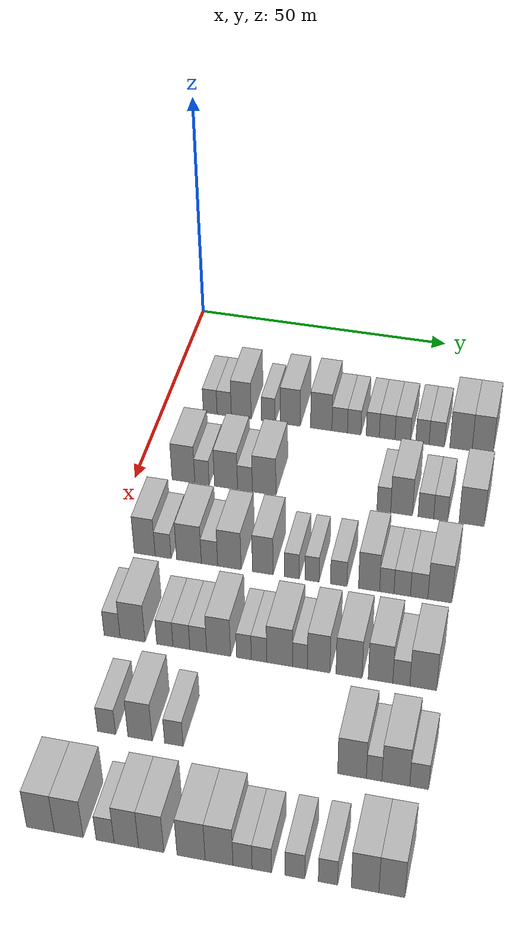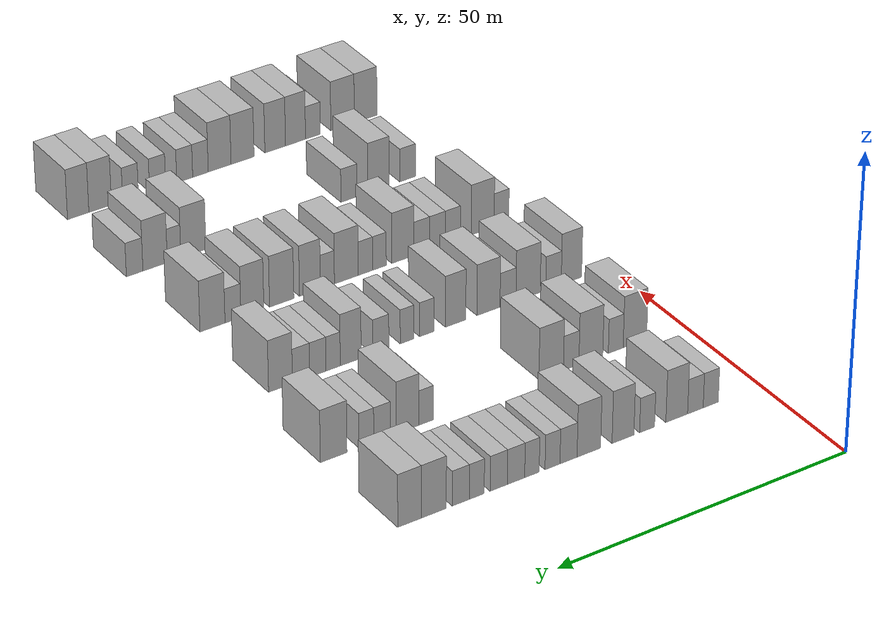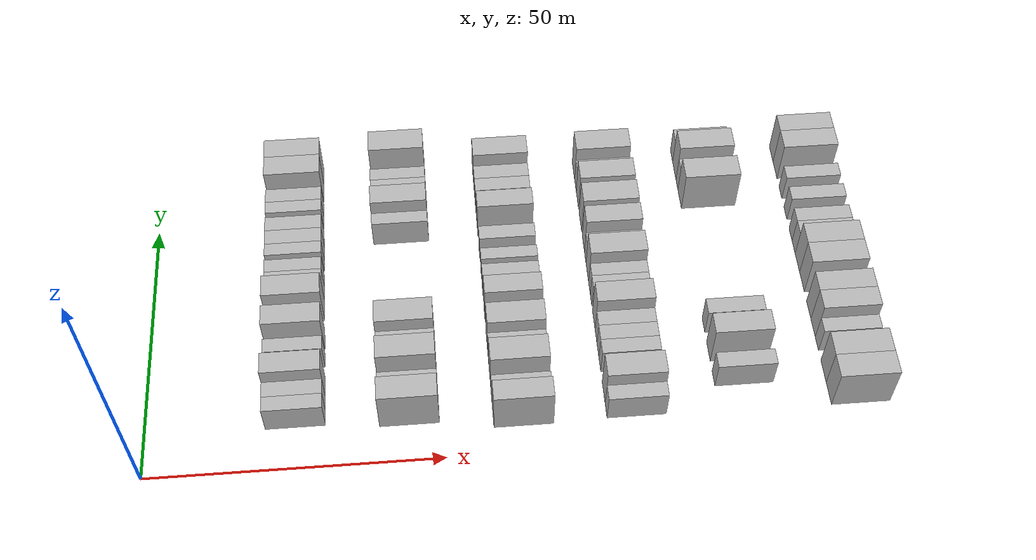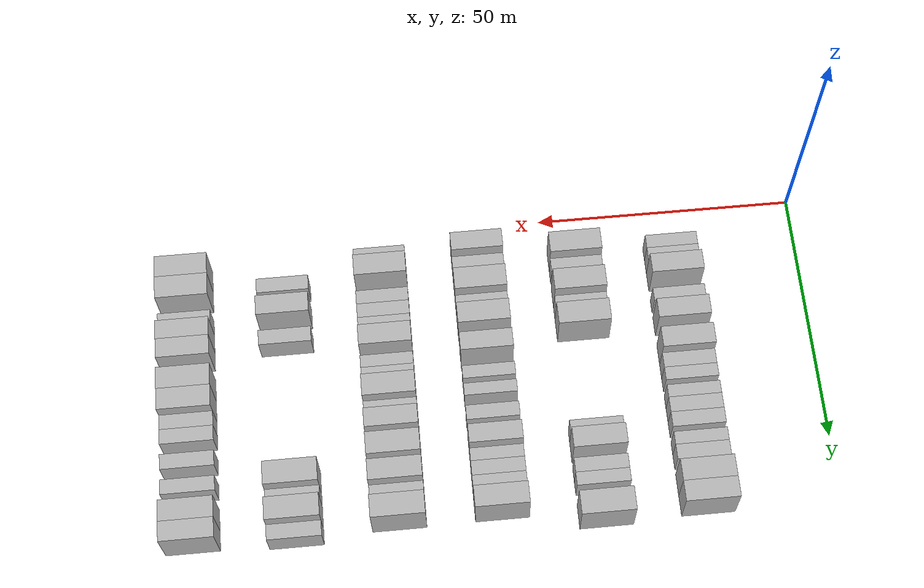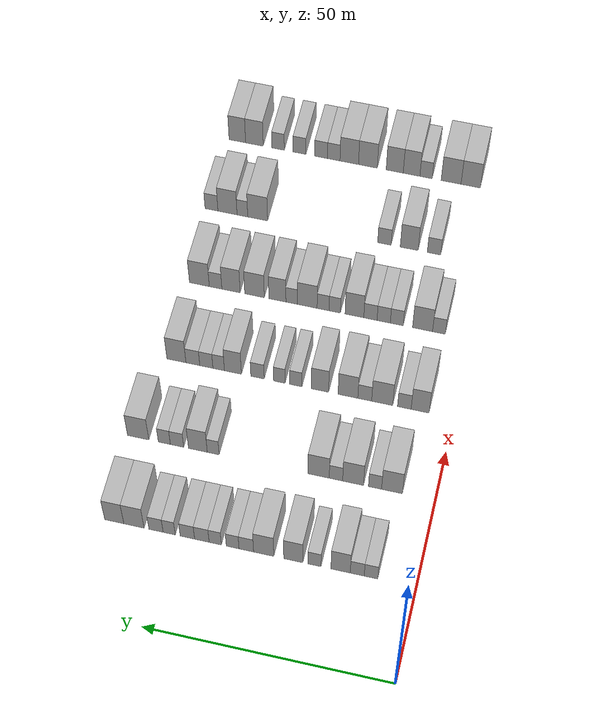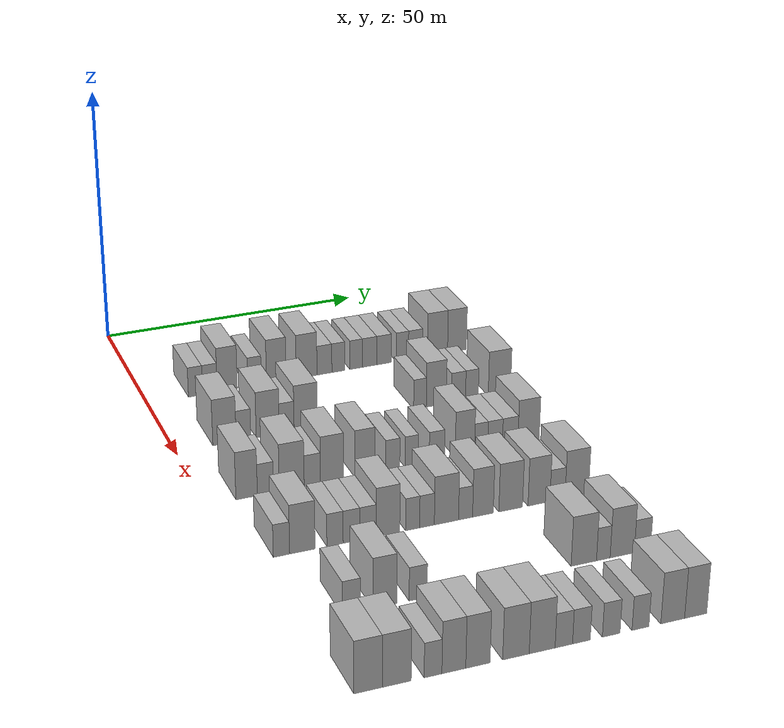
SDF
<sdf version="1.6">
 <world name="default">
  <model name="building_85">
   <static>1</static>
   <pose>25.0000 9.0672 0 0.000000 0.000000 0.000000</pose>
   <link name="link">
    <pose>0 0 3.00 0 0 0</pose>
    <collision name="collision"><geometry><box><size>10.0000 2.7078 6.0000</size></box></geometry></collision>
    <visual name="visual">
     <cast_shadows>0</cast_shadows>
     <geometry><box><size>10.0000 2.7078 6.0000</size></box></geometry>
     <material>
      <script>
       <uri>model://HANNAS_wall/materials/scripts</uri>
       <uri>model://HANNAS_wall/materials/textures</uri>
       <name>vrc/HANNAS_wall</name>
      </script>
     </material>
    </visual>
   </link>
  </model>
  <model name="building_86">
   <static>1</static>
   <pose>25.0000 11.8196 0 0.000000 0.000000 0.000000</pose>
   <link name="link">
    <pose>0 0 3.00 0 0 0</pose>
    <collision name="collision"><geometry><box><size>10.0000 2.7972 6.0000</size></box></geometry></collision>
    <visual name="visual">
     <cast_shadows>0</cast_shadows>
     <geometry><box><size>10.0000 2.7972 6.0000</size></box></geometry>
     <material>
      <script>
       <uri>model://HANNAS_wall/materials/scripts</uri>
       <uri>model://HANNAS_wall/materials/textures</uri>
       <name>vrc/HANNAS_wall</name>
      </script>
     </material>
    </visual>
   </link>
  </model>
  <model name="building_87">
   <static>1</static>
   <pose>25.0000 15.1560 0 0.000000 0.000000 0.000000</pose>
   <link name="link">
    <pose>0 0 4.50 0 0 0</pose>
    <collision name="collision"><geometry><box><size>10.0000 3.8756 9.0000</size></box></geometry></collision>
    <visual name="visual">
     <cast_shadows>0</cast_shadows>
     <geometry><box><size>10.0000 3.8756 9.0000</size></box></geometry>
     <material>
      <script>
       <uri>model://HANNAS_wall/materials/scripts</uri>
       <uri>model://HANNAS_wall/materials/textures</uri>
       <name>vrc/HANNAS_wall</name>
      </script>
     </material>
    </visual>
   </link>
  </model>
  <model name="building_88">
   <static>1</static>
   <pose>25.0000 20.4223 0 0.000000 0.000000 0.000000</pose>
   <link name="link">
    <pose>0 0 3.00 0 0 0</pose>
    <collision name="collision"><geometry><box><size>10.0000 2.6571 6.0000</size></box></geometry></collision>
    <visual name="visual">
     <cast_shadows>0</cast_shadows>
     <geometry><box><size>10.0000 2.6571 6.0000</size></box></geometry>
     <material>
      <script>
       <uri>model://HANNAS_wall/materials/scripts</uri>
       <uri>model://HANNAS_wall/materials/textures</uri>
       <name>vrc/HANNAS_wall</name>
      </script>
     </material>
    </visual>
   </link>
  </model>
  <model name="building_89">
   <static>1</static>
   <pose>25.0000 24.6739 0 0.000000 0.000000 0.000000</pose>
   <link name="link">
    <pose>0 0 4.50 0 0 0</pose>
    <collision name="collision"><geometry><box><size>10.0000 3.8461 9.0000</size></box></geometry></collision>
    <visual name="visual">
     <cast_shadows>0</cast_shadows>
     <geometry><box><size>10.0000 3.8461 9.0000</size></box></geometry>
     <material>
      <script>
       <uri>model://HANNAS_wall/materials/scripts</uri>
       <uri>model://HANNAS_wall/materials/textures</uri>
       <name>vrc/HANNAS_wall</name>
      </script>
     </material>
    </visual>
   </link>
  </model>
  <model name="building_90">
   <static>1</static>
   <pose>25.0000 30.6470 0 0.000000 0.000000 0.000000</pose>
   <link name="link">
    <pose>0 0 4.50 0 0 0</pose>
    <collision name="collision"><geometry><box><size>10.0000 4.1002 9.0000</size></box></geometry></collision>
    <visual name="visual">
     <cast_shadows>0</cast_shadows>
     <geometry><box><size>10.0000 4.1002 9.0000</size></box></geometry>
     <material>
      <script>
       <uri>model://HANNAS_wall/materials/scripts</uri>
       <uri>model://HANNAS_wall/materials/textures</uri>
       <name>vrc/HANNAS_wall</name>
      </script>
     </material>
    </visual>
   </link>
  </model>
  <model name="building_91">
   <static>1</static>
   <pose>25.0000 34.1782 0 0.000000 0.000000 0.000000</pose>
   <link name="link">
    <pose>0 0 3.00 0 0 0</pose>
    <collision name="collision"><geometry><box><size>10.0000 2.9622 6.0000</size></box></geometry></collision>
    <visual name="visual">
     <cast_shadows>0</cast_shadows>
     <geometry><box><size>10.0000 2.9622 6.0000</size></box></geometry>
     <material>
      <script>
       <uri>model://HANNAS_wall/materials/scripts</uri>
       <uri>model://HANNAS_wall/materials/textures</uri>
       <name>vrc/HANNAS_wall</name>
      </script>
     </material>
    </visual>
   </link>
  </model>
  <model name="building_92">
   <static>1</static>
   <pose>25.0000 36.9518 0 0.000000 0.000000 0.000000</pose>
   <link name="link">
    <pose>0 0 3.00 0 0 0</pose>
    <collision name="collision"><geometry><box><size>10.0000 2.5851 6.0000</size></box></geometry></collision>
    <visual name="visual">
     <cast_shadows>0</cast_shadows>
     <geometry><box><size>10.0000 2.5851 6.0000</size></box></geometry>
     <material>
      <script>
       <uri>model://HANNAS_wall/materials/scripts</uri>
       <uri>model://HANNAS_wall/materials/textures</uri>
       <name>vrc/HANNAS_wall</name>
      </script>
     </material>
    </visual>
   </link>
  </model>
  <model name="building_93">
   <static>1</static>
   <pose>25.0000 40.4892 0 0.000000 0.000000 0.000000</pose>
   <link name="link">
    <pose>0 0 3.00 0 0 0</pose>
    <collision name="collision"><geometry><box><size>10.0000 2.4897 6.0000</size></box></geometry></collision>
    <visual name="visual">
     <cast_shadows>0</cast_shadows>
     <geometry><box><size>10.0000 2.4897 6.0000</size></box></geometry>
     <material>
      <script>
       <uri>model://HANNAS_wall/materials/scripts</uri>
       <uri>model://HANNAS_wall/materials/textures</uri>
       <name>vrc/HANNAS_wall</name>
      </script>
     </material>
    </visual>
   </link>
  </model>
  <model name="building_94">
   <static>1</static>
   <pose>25.0000 43.2177 0 0.000000 0.000000 0.000000</pose>
   <link name="link">
    <pose>0 0 3.00 0 0 0</pose>
    <collision name="collision"><geometry><box><size>10.0000 2.9672 6.0000</size></box></geometry></collision>
    <visual name="visual">
     <cast_shadows>0</cast_shadows>
     <geometry><box><size>10.0000 2.9672 6.0000</size></box></geometry>
     <material>
      <script>
       <uri>model://HANNAS_wall/materials/scripts</uri>
       <uri>model://HANNAS_wall/materials/textures</uri>
       <name>vrc/HANNAS_wall</name>
      </script>
     </material>
    </visual>
   </link>
  </model>
  <model name="building_95">
   <static>1</static>
   <pose>25.0000 46.1717 0 0.000000 0.000000 0.000000</pose>
   <link name="link">
    <pose>0 0 3.00 0 0 0</pose>
    <collision name="collision"><geometry><box><size>10.0000 2.9409 6.0000</size></box></geometry></collision>
    <visual name="visual">
     <cast_shadows>0</cast_shadows>
     <geometry><box><size>10.0000 2.9409 6.0000</size></box></geometry>
     <material>
      <script>
       <uri>model://HANNAS_wall/materials/scripts</uri>
       <uri>model://HANNAS_wall/materials/textures</uri>
       <name>vrc/HANNAS_wall</name>
      </script>
     </material>
    </visual>
   </link>
  </model>
  <model name="building_96">
   <static>1</static>
   <pose>25.0000 49.8924 0 0.000000 0.000000 0.000000</pose>
   <link name="link">
    <pose>0 0 3.00 0 0 0</pose>
    <collision name="collision"><geometry><box><size>10.0000 2.5004 6.0000</size></box></geometry></collision>
    <visual name="visual">
     <cast_shadows>0</cast_shadows>
     <geometry><box><size>10.0000 2.5004 6.0000</size></box></geometry>
     <material>
      <script>
       <uri>model://HANNAS_wall/materials/scripts</uri>
       <uri>model://HANNAS_wall/materials/textures</uri>
       <name>vrc/HANNAS_wall</name>
      </script>
     </material>
    </visual>
   </link>
  </model>
  <model name="building_97">
   <static>1</static>
   <pose>25.0000 52.5951 0 0.000000 0.000000 0.000000</pose>
   <link name="link">
    <pose>0 0 3.00 0 0 0</pose>
    <collision name="collision"><geometry><box><size>10.0000 2.9051 6.0000</size></box></geometry></collision>
    <visual name="visual">
     <cast_shadows>0</cast_shadows>
     <geometry><box><size>10.0000 2.9051 6.0000</size></box></geometry>
     <material>
      <script>
       <uri>model://HANNAS_wall/materials/scripts</uri>
       <uri>model://HANNAS_wall/materials/textures</uri>
       <name>vrc/HANNAS_wall</name>
      </script>
     </material>
    </visual>
   </link>
  </model>
  <model name="building_98">
   <static>1</static>
   <pose>25.0000 57.1298 0 0.000000 0.000000 0.000000</pose>
   <link name="link">
    <pose>0 0 4.50 0 0 0</pose>
    <collision name="collision"><geometry><box><size>10.0000 4.1644 9.0000</size></box></geometry></collision>
    <visual name="visual">
     <cast_shadows>0</cast_shadows>
     <geometry><box><size>10.0000 4.1644 9.0000</size></box></geometry>
     <material>
      <script>
       <uri>model://HANNAS_wall/materials/scripts</uri>
       <uri>model://HANNAS_wall/materials/textures</uri>
       <name>vrc/HANNAS_wall</name>
      </script>
     </material>
    </visual>
   </link>
  </model>
  <model name="building_99">
   <static>1</static>
   <pose>25.0000 61.1807 0 0.000000 0.000000 0.000000</pose>
   <link name="link">
    <pose>0 0 4.50 0 0 0</pose>
    <collision name="collision"><geometry><box><size>10.0000 3.9374 9.0000</size></box></geometry></collision>
    <visual name="visual">
     <cast_shadows>0</cast_shadows>
     <geometry><box><size>10.0000 3.9374 9.0000</size></box></geometry>
     <material>
      <script>
       <uri>model://HANNAS_wall/materials/scripts</uri>
       <uri>model://HANNAS_wall/materials/textures</uri>
       <name>vrc/HANNAS_wall</name>
      </script>
     </material>
    </visual>
   </link>
  </model>
  <model name="building_264">
   <static>1</static>
   <pose>44.0000 8.8675 0 0.000000 0.000000 0.000000</pose>
   <link name="link">
    <pose>0 0 4.50 0 0 0</pose>
    <collision name="collision"><geometry><box><size>10.0000 4.2689 9.0000</size></box></geometry></collision>
    <visual name="visual">
     <cast_shadows>0</cast_shadows>
     <geometry><box><size>10.0000 4.2689 9.0000</size></box></geometry>
     <material>
      <script>
       <uri>model://HANNAS_wall/materials/scripts</uri>
       <uri>model://HANNAS_wall/materials/textures</uri>
       <name>vrc/HANNAS_wall</name>
      </script>
     </material>
    </visual>
   </link>
  </model>
  <model name="building_265">
   <static>1</static>
   <pose>44.0000 12.3481 0 0.000000 0.000000 0.000000</pose>
   <link name="link">
    <pose>0 0 3.00 0 0 0</pose>
    <collision name="collision"><geometry><box><size>10.0000 2.6922 6.0000</size></box></geometry></collision>
    <visual name="visual">
     <cast_shadows>0</cast_shadows>
     <geometry><box><size>10.0000 2.6922 6.0000</size></box></geometry>
     <material>
      <script>
       <uri>model://HANNAS_wall/materials/scripts</uri>
       <uri>model://HANNAS_wall/materials/textures</uri>
       <name>vrc/HANNAS_wall</name>
      </script>
     </material>
    </visual>
   </link>
  </model>
  <model name="building_266">
   <static>1</static>
   <pose>44.0000 16.8398 0 0.000000 0.000000 0.000000</pose>
   <link name="link">
    <pose>0 0 4.50 0 0 0</pose>
    <collision name="collision"><geometry><box><size>10.0000 4.2910 9.0000</size></box></geometry></collision>
    <visual name="visual">
     <cast_shadows>0</cast_shadows>
     <geometry><box><size>10.0000 4.2910 9.0000</size></box></geometry>
     <material>
      <script>
       <uri>model://HANNAS_wall/materials/scripts</uri>
       <uri>model://HANNAS_wall/materials/textures</uri>
       <name>vrc/HANNAS_wall</name>
      </script>
     </material>
    </visual>
   </link>
  </model>
  <model name="building_267">
   <static>1</static>
   <pose>44.0000 20.3660 0 0.000000 0.000000 0.000000</pose>
   <link name="link">
    <pose>0 0 3.00 0 0 0</pose>
    <collision name="collision"><geometry><box><size>10.0000 2.7615 6.0000</size></box></geometry></collision>
    <visual name="visual">
     <cast_shadows>0</cast_shadows>
     <geometry><box><size>10.0000 2.7615 6.0000</size></box></geometry>
     <material>
      <script>
       <uri>model://HANNAS_wall/materials/scripts</uri>
       <uri>model://HANNAS_wall/materials/textures</uri>
       <name>vrc/HANNAS_wall</name>
      </script>
     </material>
    </visual>
   </link>
  </model>
  <model name="building_268">
   <static>1</static>
   <pose>44.0000 23.9298 0 0.000000 0.000000 0.000000</pose>
   <link name="link">
    <pose>0 0 4.50 0 0 0</pose>
    <collision name="collision"><geometry><box><size>10.0000 4.3659 9.0000</size></box></geometry></collision>
    <visual name="visual">
     <cast_shadows>0</cast_shadows>
     <geometry><box><size>10.0000 4.3659 9.0000</size></box></geometry>
     <material>
      <script>
       <uri>model://HANNAS_wall/materials/scripts</uri>
       <uri>model://HANNAS_wall/materials/textures</uri>
       <name>vrc/HANNAS_wall</name>
      </script>
     </material>
    </visual>
   </link>
  </model>
  <model name="building_269">
   <static>1</static>
   <pose>44.0000 45.8325 0 0.000000 0.000000 0.000000</pose>
   <link name="link">
    <pose>0 0 3.00 0 0 0</pose>
    <collision name="collision"><geometry><box><size>10.0000 2.4798 6.0000</size></box></geometry></collision>
    <visual name="visual">
     <cast_shadows>0</cast_shadows>
     <geometry><box><size>10.0000 2.4798 6.0000</size></box></geometry>
     <material>
      <script>
       <uri>model://HANNAS_wall/materials/scripts</uri>
       <uri>model://HANNAS_wall/materials/textures</uri>
       <name>vrc/HANNAS_wall</name>
      </script>
     </material>
    </visual>
   </link>
  </model>
  <model name="building_270">
   <static>1</static>
   <pose>44.0000 49.0403 0 0.000000 0.000000 0.000000</pose>
   <link name="link">
    <pose>0 0 4.50 0 0 0</pose>
    <collision name="collision"><geometry><box><size>10.0000 3.9358 9.0000</size></box></geometry></collision>
    <visual name="visual">
     <cast_shadows>0</cast_shadows>
     <geometry><box><size>10.0000 3.9358 9.0000</size></box></geometry>
     <material>
      <script>
       <uri>model://HANNAS_wall/materials/scripts</uri>
       <uri>model://HANNAS_wall/materials/textures</uri>
       <name>vrc/HANNAS_wall</name>
      </script>
     </material>
    </visual>
   </link>
  </model>
  <model name="building_271">
   <static>1</static>
   <pose>44.0000 53.4089 0 0.000000 0.000000 0.000000</pose>
   <link name="link">
    <pose>0 0 3.00 0 0 0</pose>
    <collision name="collision"><geometry><box><size>10.0000 2.8014 6.0000</size></box></geometry></collision>
    <visual name="visual">
     <cast_shadows>0</cast_shadows>
     <geometry><box><size>10.0000 2.8014 6.0000</size></box></geometry>
     <material>
      <script>
       <uri>model://HANNAS_wall/materials/scripts</uri>
       <uri>model://HANNAS_wall/materials/textures</uri>
       <name>vrc/HANNAS_wall</name>
      </script>
     </material>
    </visual>
   </link>
  </model>
  <model name="building_272">
   <static>1</static>
   <pose>44.0000 56.0803 0 0.000000 0.000000 0.000000</pose>
   <link name="link">
    <pose>0 0 3.00 0 0 0</pose>
    <collision name="collision"><geometry><box><size>10.0000 2.5414 6.0000</size></box></geometry></collision>
    <visual name="visual">
     <cast_shadows>0</cast_shadows>
     <geometry><box><size>10.0000 2.5414 6.0000</size></box></geometry>
     <material>
      <script>
       <uri>model://HANNAS_wall/materials/scripts</uri>
       <uri>model://HANNAS_wall/materials/textures</uri>
       <name>vrc/HANNAS_wall</name>
      </script>
     </material>
    </visual>
   </link>
  </model>
  <model name="building_273">
   <static>1</static>
   <pose>44.0000 61.5956 0 0.000000 0.000000 0.000000</pose>
   <link name="link">
    <pose>0 0 4.50 0 0 0</pose>
    <collision name="collision"><geometry><box><size>10.0000 4.4893 9.0000</size></box></geometry></collision>
    <visual name="visual">
     <cast_shadows>0</cast_shadows>
     <geometry><box><size>10.0000 4.4893 9.0000</size></box></geometry>
     <material>
      <script>
       <uri>model://HANNAS_wall/materials/scripts</uri>
       <uri>model://HANNAS_wall/materials/textures</uri>
       <name>vrc/HANNAS_wall</name>
      </script>
     </material>
    </visual>
   </link>
  </model>
  <model name="building_433">
   <static>1</static>
   <pose>63.0000 6.9643 0 0.000000 0.000000 0.000000</pose>
   <link name="link">
    <pose>0 0 4.50 0 0 0</pose>
    <collision name="collision"><geometry><box><size>10.0000 3.7540 9.0000</size></box></geometry></collision>
    <visual name="visual">
     <cast_shadows>0</cast_shadows>
     <geometry><box><size>10.0000 3.7540 9.0000</size></box></geometry>
     <material>
      <script>
       <uri>model://HANNAS_wall/materials/scripts</uri>
       <uri>model://HANNAS_wall/materials/textures</uri>
       <name>vrc/HANNAS_wall</name>
      </script>
     </material>
    </visual>
   </link>
  </model>
  <model name="building_434">
   <static>1</static>
   <pose>63.0000 10.2673 0 0.000000 0.000000 0.000000</pose>
   <link name="link">
    <pose>0 0 3.00 0 0 0</pose>
    <collision name="collision"><geometry><box><size>10.0000 2.8521 6.0000</size></box></geometry></collision>
    <visual name="visual">
     <cast_shadows>0</cast_shadows>
     <geometry><box><size>10.0000 2.8521 6.0000</size></box></geometry>
     <material>
      <script>
       <uri>model://HANNAS_wall/materials/scripts</uri>
       <uri>model://HANNAS_wall/materials/textures</uri>
       <name>vrc/HANNAS_wall</name>
      </script>
     </material>
    </visual>
   </link>
  </model>
  <model name="building_435">
   <static>1</static>
   <pose>63.0000 14.9047 0 0.000000 0.000000 0.000000</pose>
   <link name="link">
    <pose>0 0 4.50 0 0 0</pose>
    <collision name="collision"><geometry><box><size>10.0000 4.4228 9.0000</size></box></geometry></collision>
    <visual name="visual">
     <cast_shadows>0</cast_shadows>
     <geometry><box><size>10.0000 4.4228 9.0000</size></box></geometry>
     <material>
      <script>
       <uri>model://HANNAS_wall/materials/scripts</uri>
       <uri>model://HANNAS_wall/materials/textures</uri>
       <name>vrc/HANNAS_wall</name>
      </script>
     </material>
    </visual>
   </link>
  </model>
  <model name="building_436">
   <static>1</static>
   <pose>63.0000 18.5674 0 0.000000 0.000000 0.000000</pose>
   <link name="link">
    <pose>0 0 3.00 0 0 0</pose>
    <collision name="collision"><geometry><box><size>10.0000 2.9027 6.0000</size></box></geometry></collision>
    <visual name="visual">
     <cast_shadows>0</cast_shadows>
     <geometry><box><size>10.0000 2.9027 6.0000</size></box></geometry>
     <material>
      <script>
       <uri>model://HANNAS_wall/materials/scripts</uri>
       <uri>model://HANNAS_wall/materials/textures</uri>
       <name>vrc/HANNAS_wall</name>
      </script>
     </material>
    </visual>
   </link>
  </model>
  <model name="building_437">
   <static>1</static>
   <pose>63.0000 22.1023 0 0.000000 0.000000 0.000000</pose>
   <link name="link">
    <pose>0 0 4.50 0 0 0</pose>
    <collision name="collision"><geometry><box><size>10.0000 4.1671 9.0000</size></box></geometry></collision>
    <visual name="visual">
     <cast_shadows>0</cast_shadows>
     <geometry><box><size>10.0000 4.1671 9.0000</size></box></geometry>
     <material>
      <script>
       <uri>model://HANNAS_wall/materials/scripts</uri>
       <uri>model://HANNAS_wall/materials/textures</uri>
       <name>vrc/HANNAS_wall</name>
      </script>
     </material>
    </visual>
   </link>
  </model>
  <model name="building_438">
   <static>1</static>
   <pose>63.0000 28.0080 0 0.000000 0.000000 0.000000</pose>
   <link name="link">
    <pose>0 0 4.50 0 0 0</pose>
    <collision name="collision"><geometry><box><size>10.0000 3.6443 9.0000</size></box></geometry></collision>
    <visual name="visual">
     <cast_shadows>0</cast_shadows>
     <geometry><box><size>10.0000 3.6443 9.0000</size></box></geometry>
     <material>
      <script>
       <uri>model://HANNAS_wall/materials/scripts</uri>
       <uri>model://HANNAS_wall/materials/textures</uri>
       <name>vrc/HANNAS_wall</name>
      </script>
     </material>
    </visual>
   </link>
  </model>
  <model name="building_439">
   <static>1</static>
   <pose>63.0000 33.1246 0 0.000000 0.000000 0.000000</pose>
   <link name="link">
    <pose>0 0 3.00 0 0 0</pose>
    <collision name="collision"><geometry><box><size>10.0000 2.5888 6.0000</size></box></geometry></collision>
    <visual name="visual">
     <cast_shadows>0</cast_shadows>
     <geometry><box><size>10.0000 2.5888 6.0000</size></box></geometry>
     <material>
      <script>
       <uri>model://HANNAS_wall/materials/scripts</uri>
       <uri>model://HANNAS_wall/materials/textures</uri>
       <name>vrc/HANNAS_wall</name>
      </script>
     </material>
    </visual>
   </link>
  </model>
  <model name="building_440">
   <static>1</static>
   <pose>63.0000 36.6384 0 0.000000 0.000000 0.000000</pose>
   <link name="link">
    <pose>0 0 3.00 0 0 0</pose>
    <collision name="collision"><geometry><box><size>10.0000 2.4387 6.0000</size></box></geometry></collision>
    <visual name="visual">
     <cast_shadows>0</cast_shadows>
     <geometry><box><size>10.0000 2.4387 6.0000</size></box></geometry>
     <material>
      <script>
       <uri>model://HANNAS_wall/materials/scripts</uri>
       <uri>model://HANNAS_wall/materials/textures</uri>
       <name>vrc/HANNAS_wall</name>
      </script>
     </material>
    </visual>
   </link>
  </model>
  <model name="building_441">
   <static>1</static>
   <pose>63.0000 41.2878 0 0.000000 0.000000 0.000000</pose>
   <link name="link">
    <pose>0 0 3.00 0 0 0</pose>
    <collision name="collision"><geometry><box><size>10.0000 2.8603 6.0000</size></box></geometry></collision>
    <visual name="visual">
     <cast_shadows>0</cast_shadows>
     <geometry><box><size>10.0000 2.8603 6.0000</size></box></geometry>
     <material>
      <script>
       <uri>model://HANNAS_wall/materials/scripts</uri>
       <uri>model://HANNAS_wall/materials/textures</uri>
       <name>vrc/HANNAS_wall</name>
      </script>
     </material>
    </visual>
   </link>
  </model>
  <model name="building_442">
   <static>1</static>
   <pose>63.0000 46.5368 0 0.000000 0.000000 0.000000</pose>
   <link name="link">
    <pose>0 0 4.50 0 0 0</pose>
    <collision name="collision"><geometry><box><size>10.0000 3.6377 9.0000</size></box></geometry></collision>
    <visual name="visual">
     <cast_shadows>0</cast_shadows>
     <geometry><box><size>10.0000 3.6377 9.0000</size></box></geometry>
     <material>
      <script>
       <uri>model://HANNAS_wall/materials/scripts</uri>
       <uri>model://HANNAS_wall/materials/textures</uri>
       <name>vrc/HANNAS_wall</name>
      </script>
     </material>
    </visual>
   </link>
  </model>
  <model name="building_443">
   <static>1</static>
   <pose>63.0000 49.5938 0 0.000000 0.000000 0.000000</pose>
   <link name="link">
    <pose>0 0 3.00 0 0 0</pose>
    <collision name="collision"><geometry><box><size>10.0000 2.4761 6.0000</size></box></geometry></collision>
    <visual name="visual">
     <cast_shadows>0</cast_shadows>
     <geometry><box><size>10.0000 2.4761 6.0000</size></box></geometry>
     <material>
      <script>
       <uri>model://HANNAS_wall/materials/scripts</uri>
       <uri>model://HANNAS_wall/materials/textures</uri>
       <name>vrc/HANNAS_wall</name>
      </script>
     </material>
    </visual>
   </link>
  </model>
  <model name="building_444">
   <static>1</static>
   <pose>63.0000 52.2409 0 0.000000 0.000000 0.000000</pose>
   <link name="link">
    <pose>0 0 3.00 0 0 0</pose>
    <collision name="collision"><geometry><box><size>10.0000 2.8182 6.0000</size></box></geometry></collision>
    <visual name="visual">
     <cast_shadows>0</cast_shadows>
     <geometry><box><size>10.0000 2.8182 6.0000</size></box></geometry>
     <material>
      <script>
       <uri>model://HANNAS_wall/materials/scripts</uri>
       <uri>model://HANNAS_wall/materials/textures</uri>
       <name>vrc/HANNAS_wall</name>
      </script>
     </material>
    </visual>
   </link>
  </model>
  <model name="building_445">
   <static>1</static>
   <pose>63.0000 55.1361 0 0.000000 0.000000 0.000000</pose>
   <link name="link">
    <pose>0 0 3.00 0 0 0</pose>
    <collision name="collision"><geometry><box><size>10.0000 2.9723 6.0000</size></box></geometry></collision>
    <visual name="visual">
     <cast_shadows>0</cast_shadows>
     <geometry><box><size>10.0000 2.9723 6.0000</size></box></geometry>
     <material>
      <script>
       <uri>model://HANNAS_wall/materials/scripts</uri>
       <uri>model://HANNAS_wall/materials/textures</uri>
       <name>vrc/HANNAS_wall</name>
      </script>
     </material>
    </visual>
   </link>
  </model>
  <model name="building_446">
   <static>1</static>
   <pose>63.0000 58.6663 0 0.000000 0.000000 0.000000</pose>
   <link name="link">
    <pose>0 0 4.50 0 0 0</pose>
    <collision name="collision"><geometry><box><size>10.0000 4.0880 9.0000</size></box></geometry></collision>
    <visual name="visual">
     <cast_shadows>0</cast_shadows>
     <geometry><box><size>10.0000 4.0880 9.0000</size></box></geometry>
     <material>
      <script>
       <uri>model://HANNAS_wall/materials/scripts</uri>
       <uri>model://HANNAS_wall/materials/textures</uri>
       <name>vrc/HANNAS_wall</name>
      </script>
     </material>
    </visual>
   </link>
  </model>
  <model name="building_600">
   <static>1</static>
   <pose>82.0000 6.7782 0 0.000000 0.000000 0.000000</pose>
   <link name="link">
    <pose>0 0 3.00 0 0 0</pose>
    <collision name="collision"><geometry><box><size>10.0000 2.7332 6.0000</size></box></geometry></collision>
    <visual name="visual">
     <cast_shadows>0</cast_shadows>
     <geometry><box><size>10.0000 2.7332 6.0000</size></box></geometry>
     <material>
      <script>
       <uri>model://HANNAS_wall/materials/scripts</uri>
       <uri>model://HANNAS_wall/materials/textures</uri>
       <name>vrc/HANNAS_wall</name>
      </script>
     </material>
    </visual>
   </link>
  </model>
  <model name="building_601">
   <static>1</static>
   <pose>82.0000 10.2832 0 0.000000 0.000000 0.000000</pose>
   <link name="link">
    <pose>0 0 4.50 0 0 0</pose>
    <collision name="collision"><geometry><box><size>10.0000 4.2770 9.0000</size></box></geometry></collision>
    <visual name="visual">
     <cast_shadows>0</cast_shadows>
     <geometry><box><size>10.0000 4.2770 9.0000</size></box></geometry>
     <material>
      <script>
       <uri>model://HANNAS_wall/materials/scripts</uri>
       <uri>model://HANNAS_wall/materials/textures</uri>
       <name>vrc/HANNAS_wall</name>
      </script>
     </material>
    </visual>
   </link>
  </model>
  <model name="building_602">
   <static>1</static>
   <pose>82.0000 15.8081 0 0.000000 0.000000 0.000000</pose>
   <link name="link">
    <pose>0 0 3.00 0 0 0</pose>
    <collision name="collision"><geometry><box><size>10.0000 2.7727 6.0000</size></box></geometry></collision>
    <visual name="visual">
     <cast_shadows>0</cast_shadows>
     <geometry><box><size>10.0000 2.7727 6.0000</size></box></geometry>
     <material>
      <script>
       <uri>model://HANNAS_wall/materials/scripts</uri>
       <uri>model://HANNAS_wall/materials/textures</uri>
       <name>vrc/HANNAS_wall</name>
      </script>
     </material>
    </visual>
   </link>
  </model>
  <model name="building_603">
   <static>1</static>
   <pose>82.0000 18.6230 0 0.000000 0.000000 0.000000</pose>
   <link name="link">
    <pose>0 0 3.00 0 0 0</pose>
    <collision name="collision"><geometry><box><size>10.0000 2.8572 6.0000</size></box></geometry></collision>
    <visual name="visual">
     <cast_shadows>0</cast_shadows>
     <geometry><box><size>10.0000 2.8572 6.0000</size></box></geometry>
     <material>
      <script>
       <uri>model://HANNAS_wall/materials/scripts</uri>
       <uri>model://HANNAS_wall/materials/textures</uri>
       <name>vrc/HANNAS_wall</name>
      </script>
     </material>
    </visual>
   </link>
  </model>
  <model name="building_604">
   <static>1</static>
   <pose>82.0000 21.4742 0 0.000000 0.000000 0.000000</pose>
   <link name="link">
    <pose>0 0 3.00 0 0 0</pose>
    <collision name="collision"><geometry><box><size>10.0000 2.8452 6.0000</size></box></geometry></collision>
    <visual name="visual">
     <cast_shadows>0</cast_shadows>
     <geometry><box><size>10.0000 2.8452 6.0000</size></box></geometry>
     <material>
      <script>
       <uri>model://HANNAS_wall/materials/scripts</uri>
       <uri>model://HANNAS_wall/materials/textures</uri>
       <name>vrc/HANNAS_wall</name>
      </script>
     </material>
    </visual>
   </link>
  </model>
  <model name="building_605">
   <static>1</static>
   <pose>82.0000 24.9216 0 0.000000 0.000000 0.000000</pose>
   <link name="link">
    <pose>0 0 4.50 0 0 0</pose>
    <collision name="collision"><geometry><box><size>10.0000 4.0496 9.0000</size></box></geometry></collision>
    <visual name="visual">
     <cast_shadows>0</cast_shadows>
     <geometry><box><size>10.0000 4.0496 9.0000</size></box></geometry>
     <material>
      <script>
       <uri>model://HANNAS_wall/materials/scripts</uri>
       <uri>model://HANNAS_wall/materials/textures</uri>
       <name>vrc/HANNAS_wall</name>
      </script>
     </material>
    </visual>
   </link>
  </model>
  <model name="building_606">
   <static>1</static>
   <pose>82.0000 29.1806 0 0.000000 0.000000 0.000000</pose>
   <link name="link">
    <pose>0 0 3.00 0 0 0</pose>
    <collision name="collision"><geometry><box><size>10.0000 2.4684 6.0000</size></box></geometry></collision>
    <visual name="visual">
     <cast_shadows>0</cast_shadows>
     <geometry><box><size>10.0000 2.4684 6.0000</size></box></geometry>
     <material>
      <script>
       <uri>model://HANNAS_wall/materials/scripts</uri>
       <uri>model://HANNAS_wall/materials/textures</uri>
       <name>vrc/HANNAS_wall</name>
      </script>
     </material>
    </visual>
   </link>
  </model>
  <model name="building_607">
   <static>1</static>
   <pose>82.0000 31.7071 0 0.000000 0.000000 0.000000</pose>
   <link name="link">
    <pose>0 0 3.00 0 0 0</pose>
    <collision name="collision"><geometry><box><size>10.0000 2.5846 6.0000</size></box></geometry></collision>
    <visual name="visual">
     <cast_shadows>0</cast_shadows>
     <geometry><box><size>10.0000 2.5846 6.0000</size></box></geometry>
     <material>
      <script>
       <uri>model://HANNAS_wall/materials/scripts</uri>
       <uri>model://HANNAS_wall/materials/textures</uri>
       <name>vrc/HANNAS_wall</name>
      </script>
     </material>
    </visual>
   </link>
  </model>
  <model name="building_608">
   <static>1</static>
   <pose>82.0000 35.1365 0 0.000000 0.000000 0.000000</pose>
   <link name="link">
    <pose>0 0 4.50 0 0 0</pose>
    <collision name="collision"><geometry><box><size>10.0000 4.2742 9.0000</size></box></geometry></collision>
    <visual name="visual">
     <cast_shadows>0</cast_shadows>
     <geometry><box><size>10.0000 4.2742 9.0000</size></box></geometry>
     <material>
      <script>
       <uri>model://HANNAS_wall/materials/scripts</uri>
       <uri>model://HANNAS_wall/materials/textures</uri>
       <name>vrc/HANNAS_wall</name>
      </script>
     </material>
    </visual>
   </link>
  </model>
  <model name="building_609">
   <static>1</static>
   <pose>82.0000 38.5257 0 0.000000 0.000000 0.000000</pose>
   <link name="link">
    <pose>0 0 3.00 0 0 0</pose>
    <collision name="collision"><geometry><box><size>10.0000 2.5044 6.0000</size></box></geometry></collision>
    <visual name="visual">
     <cast_shadows>0</cast_shadows>
     <geometry><box><size>10.0000 2.5044 6.0000</size></box></geometry>
     <material>
      <script>
       <uri>model://HANNAS_wall/materials/scripts</uri>
       <uri>model://HANNAS_wall/materials/textures</uri>
       <name>vrc/HANNAS_wall</name>
      </script>
     </material>
    </visual>
   </link>
  </model>
  <model name="building_610">
   <static>1</static>
   <pose>82.0000 41.6342 0 0.000000 0.000000 0.000000</pose>
   <link name="link">
    <pose>0 0 4.50 0 0 0</pose>
    <collision name="collision"><geometry><box><size>10.0000 3.7126 9.0000</size></box></geometry></collision>
    <visual name="visual">
     <cast_shadows>0</cast_shadows>
     <geometry><box><size>10.0000 3.7126 9.0000</size></box></geometry>
     <material>
      <script>
       <uri>model://HANNAS_wall/materials/scripts</uri>
       <uri>model://HANNAS_wall/materials/textures</uri>
       <name>vrc/HANNAS_wall</name>
      </script>
     </material>
    </visual>
   </link>
  </model>
  <model name="building_611">
   <static>1</static>
   <pose>82.0000 46.6335 0 0.000000 0.000000 0.000000</pose>
   <link name="link">
    <pose>0 0 4.50 0 0 0</pose>
    <collision name="collision"><geometry><box><size>10.0000 4.2860 9.0000</size></box></geometry></collision>
    <visual name="visual">
     <cast_shadows>0</cast_shadows>
     <geometry><box><size>10.0000 4.2860 9.0000</size></box></geometry>
     <material>
      <script>
       <uri>model://HANNAS_wall/materials/scripts</uri>
       <uri>model://HANNAS_wall/materials/textures</uri>
       <name>vrc/HANNAS_wall</name>
      </script>
     </material>
    </visual>
   </link>
  </model>
  <model name="building_612">
   <static>1</static>
   <pose>82.0000 51.7833 0 0.000000 0.000000 0.000000</pose>
   <link name="link">
    <pose>0 0 4.50 0 0 0</pose>
    <collision name="collision"><geometry><box><size>10.0000 4.0136 9.0000</size></box></geometry></collision>
    <visual name="visual">
     <cast_shadows>0</cast_shadows>
     <geometry><box><size>10.0000 4.0136 9.0000</size></box></geometry>
     <material>
      <script>
       <uri>model://HANNAS_wall/materials/scripts</uri>
       <uri>model://HANNAS_wall/materials/textures</uri>
       <name>vrc/HANNAS_wall</name>
      </script>
     </material>
    </visual>
   </link>
  </model>
  <model name="building_613">
   <static>1</static>
   <pose>82.0000 55.1754 0 0.000000 0.000000 0.000000</pose>
   <link name="link">
    <pose>0 0 3.00 0 0 0</pose>
    <collision name="collision"><geometry><box><size>10.0000 2.7708 6.0000</size></box></geometry></collision>
    <visual name="visual">
     <cast_shadows>0</cast_shadows>
     <geometry><box><size>10.0000 2.7708 6.0000</size></box></geometry>
     <material>
      <script>
       <uri>model://HANNAS_wall/materials/scripts</uri>
       <uri>model://HANNAS_wall/materials/textures</uri>
       <name>vrc/HANNAS_wall</name>
      </script>
     </material>
    </visual>
   </link>
  </model>
  <model name="building_614">
   <static>1</static>
   <pose>82.0000 58.7341 0 0.000000 0.000000 0.000000</pose>
   <link name="link">
    <pose>0 0 4.50 0 0 0</pose>
    <collision name="collision"><geometry><box><size>10.0000 4.3465 9.0000</size></box></geometry></collision>
    <visual name="visual">
     <cast_shadows>0</cast_shadows>
     <geometry><box><size>10.0000 4.3465 9.0000</size></box></geometry>
     <material>
      <script>
       <uri>model://HANNAS_wall/materials/scripts</uri>
       <uri>model://HANNAS_wall/materials/textures</uri>
       <name>vrc/HANNAS_wall</name>
      </script>
     </material>
    </visual>
   </link>
  </model>
  <model name="building_777">
   <static>1</static>
   <pose>101.0000 11.5982 0 0.000000 0.000000 0.000000</pose>
   <link name="link">
    <pose>0 0 3.00 0 0 0</pose>
    <collision name="collision"><geometry><box><size>10.0000 2.9419 6.0000</size></box></geometry></collision>
    <visual name="visual">
     <cast_shadows>0</cast_shadows>
     <geometry><box><size>10.0000 2.9419 6.0000</size></box></geometry>
     <material>
      <script>
       <uri>model://HANNAS_wall/materials/scripts</uri>
       <uri>model://HANNAS_wall/materials/textures</uri>
       <name>vrc/HANNAS_wall</name>
      </script>
     </material>
    </visual>
   </link>
  </model>
  <model name="building_778">
   <static>1</static>
   <pose>101.0000 17.0348 0 0.000000 0.000000 0.000000</pose>
   <link name="link">
    <pose>0 0 4.50 0 0 0</pose>
    <collision name="collision"><geometry><box><size>10.0000 3.9312 9.0000</size></box></geometry></collision>
    <visual name="visual">
     <cast_shadows>0</cast_shadows>
     <geometry><box><size>10.0000 3.9312 9.0000</size></box></geometry>
     <material>
      <script>
       <uri>model://HANNAS_wall/materials/scripts</uri>
       <uri>model://HANNAS_wall/materials/textures</uri>
       <name>vrc/HANNAS_wall</name>
      </script>
     </material>
    </visual>
   </link>
  </model>
  <model name="building_779">
   <static>1</static>
   <pose>101.0000 22.4870 0 0.000000 0.000000 0.000000</pose>
   <link name="link">
    <pose>0 0 3.00 0 0 0</pose>
    <collision name="collision"><geometry><box><size>10.0000 2.9732 6.0000</size></box></geometry></collision>
    <visual name="visual">
     <cast_shadows>0</cast_shadows>
     <geometry><box><size>10.0000 2.9732 6.0000</size></box></geometry>
     <material>
      <script>
       <uri>model://HANNAS_wall/materials/scripts</uri>
       <uri>model://HANNAS_wall/materials/textures</uri>
       <name>vrc/HANNAS_wall</name>
      </script>
     </material>
    </visual>
   </link>
  </model>
  <model name="building_780">
   <static>1</static>
   <pose>101.0000 50.6440 0 0.000000 0.000000 0.000000</pose>
   <link name="link">
    <pose>0 0 4.50 0 0 0</pose>
    <collision name="collision"><geometry><box><size>10.0000 4.4469 9.0000</size></box></geometry></collision>
    <visual name="visual">
     <cast_shadows>0</cast_shadows>
     <geometry><box><size>10.0000 4.4469 9.0000</size></box></geometry>
     <material>
      <script>
       <uri>model://HANNAS_wall/materials/scripts</uri>
       <uri>model://HANNAS_wall/materials/textures</uri>
       <name>vrc/HANNAS_wall</name>
      </script>
     </material>
    </visual>
   </link>
  </model>
  <model name="building_781">
   <static>1</static>
   <pose>101.0000 54.0689 0 0.000000 0.000000 0.000000</pose>
   <link name="link">
    <pose>0 0 3.00 0 0 0</pose>
    <collision name="collision"><geometry><box><size>10.0000 2.4031 6.0000</size></box></geometry></collision>
    <visual name="visual">
     <cast_shadows>0</cast_shadows>
     <geometry><box><size>10.0000 2.4031 6.0000</size></box></geometry>
     <material>
      <script>
       <uri>model://HANNAS_wall/materials/scripts</uri>
       <uri>model://HANNAS_wall/materials/textures</uri>
       <name>vrc/HANNAS_wall</name>
      </script>
     </material>
    </visual>
   </link>
  </model>
  <model name="building_782">
   <static>1</static>
   <pose>101.0000 57.4166 0 0.000000 0.000000 0.000000</pose>
   <link name="link">
    <pose>0 0 4.50 0 0 0</pose>
    <collision name="collision"><geometry><box><size>10.0000 4.2922 9.0000</size></box></geometry></collision>
    <visual name="visual">
     <cast_shadows>0</cast_shadows>
     <geometry><box><size>10.0000 4.2922 9.0000</size></box></geometry>
     <material>
      <script>
       <uri>model://HANNAS_wall/materials/scripts</uri>
       <uri>model://HANNAS_wall/materials/textures</uri>
       <name>vrc/HANNAS_wall</name>
      </script>
     </material>
    </visual>
   </link>
  </model>
  <model name="building_783">
   <static>1</static>
   <pose>101.0000 61.0104 0 0.000000 0.000000 0.000000</pose>
   <link name="link">
    <pose>0 0 3.00 0 0 0</pose>
    <collision name="collision"><geometry><box><size>10.0000 2.8955 6.0000</size></box></geometry></collision>
    <visual name="visual">
     <cast_shadows>0</cast_shadows>
     <geometry><box><size>10.0000 2.8955 6.0000</size></box></geometry>
     <material>
      <script>
       <uri>model://HANNAS_wall/materials/scripts</uri>
       <uri>model://HANNAS_wall/materials/textures</uri>
       <name>vrc/HANNAS_wall</name>
      </script>
     </material>
    </visual>
   </link>
  </model>
  <model name="building_947">
   <static>1</static>
   <pose>120.0000 7.1505 0 0.000000 0.000000 0.000000</pose>
   <link name="link">
    <pose>0 0 4.50 0 0 0</pose>
    <collision name="collision"><geometry><box><size>10.0000 4.3176 9.0000</size></box></geometry></collision>
    <visual name="visual">
     <cast_shadows>0</cast_shadows>
     <geometry><box><size>10.0000 4.3176 9.0000</size></box></geometry>
     <material>
      <script>
       <uri>model://HANNAS_wall/materials/scripts</uri>
       <uri>model://HANNAS_wall/materials/textures</uri>
       <name>vrc/HANNAS_wall</name>
      </script>
     </material>
    </visual>
   </link>
  </model>
  <model name="building_948">
   <static>1</static>
   <pose>120.0000 11.5317 0 0.000000 0.000000 0.000000</pose>
   <link name="link">
    <pose>0 0 4.50 0 0 0</pose>
    <collision name="collision"><geometry><box><size>10.0000 4.4449 9.0000</size></box></geometry></collision>
    <visual name="visual">
     <cast_shadows>0</cast_shadows>
     <geometry><box><size>10.0000 4.4449 9.0000</size></box></geometry>
     <material>
      <script>
       <uri>model://HANNAS_wall/materials/scripts</uri>
       <uri>model://HANNAS_wall/materials/textures</uri>
       <name>vrc/HANNAS_wall</name>
      </script>
     </material>
    </visual>
   </link>
  </model>
  <model name="building_949">
   <static>1</static>
   <pose>120.0000 17.1390 0 0.000000 0.000000 0.000000</pose>
   <link name="link">
    <pose>0 0 3.00 0 0 0</pose>
    <collision name="collision"><geometry><box><size>10.0000 2.7697 6.0000</size></box></geometry></collision>
    <visual name="visual">
     <cast_shadows>0</cast_shadows>
     <geometry><box><size>10.0000 2.7697 6.0000</size></box></geometry>
     <material>
      <script>
       <uri>model://HANNAS_wall/materials/scripts</uri>
       <uri>model://HANNAS_wall/materials/textures</uri>
       <name>vrc/HANNAS_wall</name>
      </script>
     </material>
    </visual>
   </link>
  </model>
  <model name="building_950">
   <static>1</static>
   <pose>120.0000 20.3938 0 0.000000 0.000000 0.000000</pose>
   <link name="link">
    <pose>0 0 4.50 0 0 0</pose>
    <collision name="collision"><geometry><box><size>10.0000 3.7400 9.0000</size></box></geometry></collision>
    <visual name="visual">
     <cast_shadows>0</cast_shadows>
     <geometry><box><size>10.0000 3.7400 9.0000</size></box></geometry>
     <material>
      <script>
       <uri>model://HANNAS_wall/materials/scripts</uri>
       <uri>model://HANNAS_wall/materials/textures</uri>
       <name>vrc/HANNAS_wall</name>
      </script>
     </material>
    </visual>
   </link>
  </model>
  <model name="building_951">
   <static>1</static>
   <pose>120.0000 24.1871 0 0.000000 0.000000 0.000000</pose>
   <link name="link">
    <pose>0 0 4.50 0 0 0</pose>
    <collision name="collision"><geometry><box><size>10.0000 3.8465 9.0000</size></box></geometry></collision>
    <visual name="visual">
     <cast_shadows>0</cast_shadows>
     <geometry><box><size>10.0000 3.8465 9.0000</size></box></geometry>
     <material>
      <script>
       <uri>model://HANNAS_wall/materials/scripts</uri>
       <uri>model://HANNAS_wall/materials/textures</uri>
       <name>vrc/HANNAS_wall</name>
      </script>
     </material>
    </visual>
   </link>
  </model>
  <model name="building_952">
   <static>1</static>
   <pose>120.0000 30.2375 0 0.000000 0.000000 0.000000</pose>
   <link name="link">
    <pose>0 0 4.50 0 0 0</pose>
    <collision name="collision"><geometry><box><size>10.0000 4.2543 9.0000</size></box></geometry></collision>
    <visual name="visual">
     <cast_shadows>0</cast_shadows>
     <geometry><box><size>10.0000 4.2543 9.0000</size></box></geometry>
     <material>
      <script>
       <uri>model://HANNAS_wall/materials/scripts</uri>
       <uri>model://HANNAS_wall/materials/textures</uri>
       <name>vrc/HANNAS_wall</name>
      </script>
     </material>
    </visual>
   </link>
  </model>
  <model name="building_953">
   <static>1</static>
   <pose>120.0000 34.4588 0 0.000000 0.000000 0.000000</pose>
   <link name="link">
    <pose>0 0 4.50 0 0 0</pose>
    <collision name="collision"><geometry><box><size>10.0000 4.1885 9.0000</size></box></geometry></collision>
    <visual name="visual">
     <cast_shadows>0</cast_shadows>
     <geometry><box><size>10.0000 4.1885 9.0000</size></box></geometry>
     <material>
      <script>
       <uri>model://HANNAS_wall/materials/scripts</uri>
       <uri>model://HANNAS_wall/materials/textures</uri>
       <name>vrc/HANNAS_wall</name>
      </script>
     </material>
    </visual>
   </link>
  </model>
  <model name="building_954">
   <static>1</static>
   <pose>120.0000 37.9766 0 0.000000 0.000000 0.000000</pose>
   <link name="link">
    <pose>0 0 3.00 0 0 0</pose>
    <collision name="collision"><geometry><box><size>10.0000 2.8469 6.0000</size></box></geometry></collision>
    <visual name="visual">
     <cast_shadows>0</cast_shadows>
     <geometry><box><size>10.0000 2.8469 6.0000</size></box></geometry>
     <material>
      <script>
       <uri>model://HANNAS_wall/materials/scripts</uri>
       <uri>model://HANNAS_wall/materials/textures</uri>
       <name>vrc/HANNAS_wall</name>
      </script>
     </material>
    </visual>
   </link>
  </model>
  <model name="building_955">
   <static>1</static>
   <pose>120.0000 40.8514 0 0.000000 0.000000 0.000000</pose>
   <link name="link">
    <pose>0 0 3.00 0 0 0</pose>
    <collision name="collision"><geometry><box><size>10.0000 2.9027 6.0000</size></box></geometry></collision>
    <visual name="visual">
     <cast_shadows>0</cast_shadows>
     <geometry><box><size>10.0000 2.9027 6.0000</size></box></geometry>
     <material>
      <script>
       <uri>model://HANNAS_wall/materials/scripts</uri>
       <uri>model://HANNAS_wall/materials/textures</uri>
       <name>vrc/HANNAS_wall</name>
      </script>
     </material>
    </visual>
   </link>
  </model>
  <model name="building_956">
   <static>1</static>
   <pose>120.0000 45.7677 0 0.000000 0.000000 0.000000</pose>
   <link name="link">
    <pose>0 0 3.00 0 0 0</pose>
    <collision name="collision"><geometry><box><size>10.0000 2.9298 6.0000</size></box></geometry></collision>
    <visual name="visual">
     <cast_shadows>0</cast_shadows>
     <geometry><box><size>10.0000 2.9298 6.0000</size></box></geometry>
     <material>
      <script>
       <uri>model://HANNAS_wall/materials/scripts</uri>
       <uri>model://HANNAS_wall/materials/textures</uri>
       <name>vrc/HANNAS_wall</name>
      </script>
     </material>
    </visual>
   </link>
  </model>
  <model name="building_957">
   <static>1</static>
   <pose>120.0000 50.6499 0 0.000000 0.000000 0.000000</pose>
   <link name="link">
    <pose>0 0 3.00 0 0 0</pose>
    <collision name="collision"><geometry><box><size>10.0000 2.8347 6.0000</size></box></geometry></collision>
    <visual name="visual">
     <cast_shadows>0</cast_shadows>
     <geometry><box><size>10.0000 2.8347 6.0000</size></box></geometry>
     <material>
      <script>
       <uri>model://HANNAS_wall/materials/scripts</uri>
       <uri>model://HANNAS_wall/materials/textures</uri>
       <name>vrc/HANNAS_wall</name>
      </script>
     </material>
    </visual>
   </link>
  </model>
  <model name="building_958">
   <static>1</static>
   <pose>120.0000 56.0853 0 0.000000 0.000000 0.000000</pose>
   <link name="link">
    <pose>0 0 4.50 0 0 0</pose>
    <collision name="collision"><geometry><box><size>10.0000 4.0361 9.0000</size></box></geometry></collision>
    <visual name="visual">
     <cast_shadows>0</cast_shadows>
     <geometry><box><size>10.0000 4.0361 9.0000</size></box></geometry>
     <material>
      <script>
       <uri>model://HANNAS_wall/materials/scripts</uri>
       <uri>model://HANNAS_wall/materials/textures</uri>
       <name>vrc/HANNAS_wall</name>
      </script>
     </material>
    </visual>
   </link>
  </model>
  <model name="building_959">
   <static>1</static>
   <pose>120.0000 59.9931 0 0.000000 0.000000 0.000000</pose>
   <link name="link">
    <pose>0 0 4.50 0 0 0</pose>
    <collision name="collision"><geometry><box><size>10.0000 3.7796 9.0000</size></box></geometry></collision>
    <visual name="visual">
     <cast_shadows>0</cast_shadows>
     <geometry><box><size>10.0000 3.7796 9.0000</size></box></geometry>
     <material>
      <script>
       <uri>model://HANNAS_wall/materials/scripts</uri>
       <uri>model://HANNAS_wall/materials/textures</uri>
       <name>vrc/HANNAS_wall</name>
      </script>
     </material>
    </visual>
   </link>
  </model>
 </world>
</sdf>
